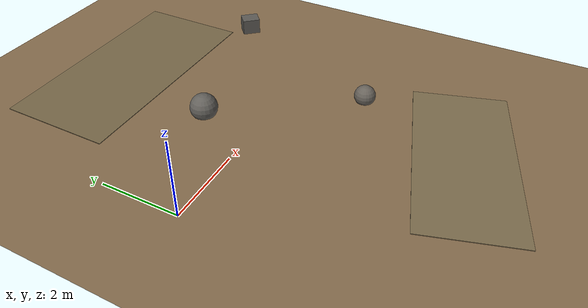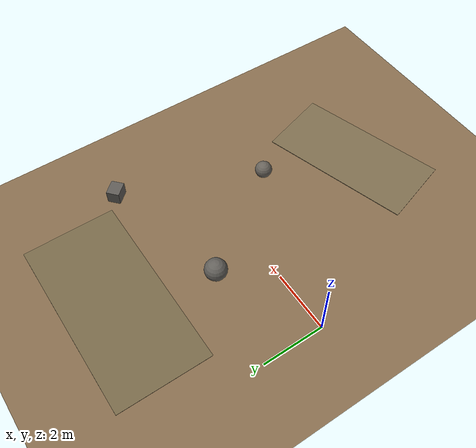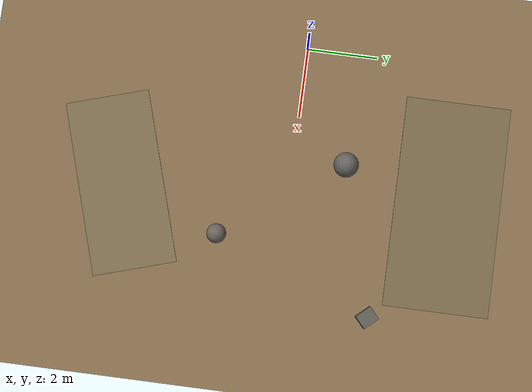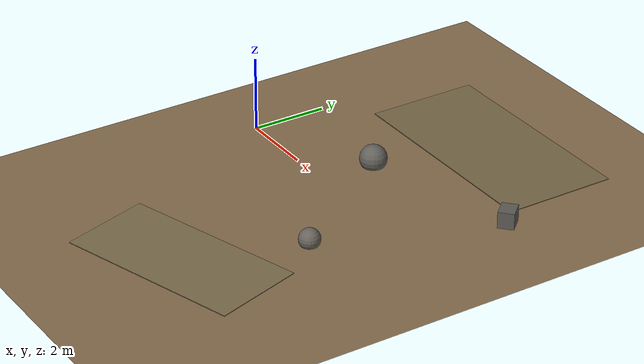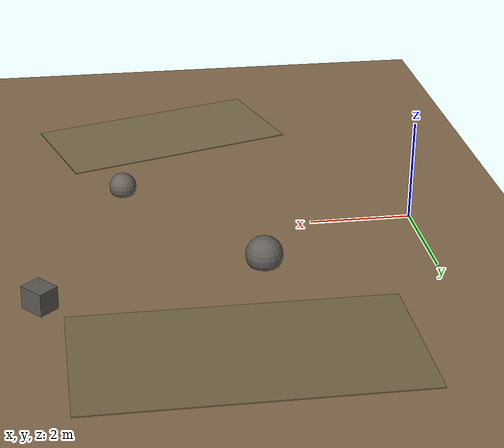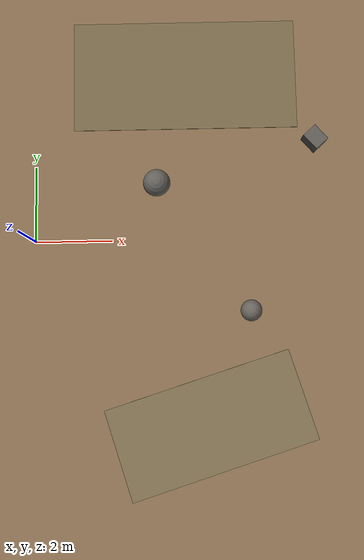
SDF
<?xml version="1.0" ?>
<sdf version="1.9">
  <world name="easy">

    <physics name="1ms" type="ignored">
      <max_step_size>0.001</max_step_size>
      <real_time_factor>1.0</real_time_factor>
    </physics>

    <plugin filename="gz-sim-physics-system"
            name="gz::sim::systems::Physics"/>
    <plugin filename="gz-sim-user-commands-system"
            name="gz::sim::systems::UserCommands"/>
    <plugin filename="gz-sim-scene-broadcaster-system"
            name="gz::sim::systems::SceneBroadcaster"/>
    <!-- Required for the camera and depth sensors to produce anything. -->
    <plugin filename="gz-sim-sensors-system"
            name="gz::sim::systems::Sensors">
      <render_engine>ogre2</render_engine>
    </plugin>
    <plugin filename="gz-sim-imu-system"
            name="gz::sim::systems::Imu"/>
    <plugin filename="gz-sim-contact-system"
            name="gz::sim::systems::Contact"/>

    <gravity>0 0 -9.8</gravity>
    <magnetic_field>5.565e-6 2.289e-5 -4.239e-5</magnetic_field>

    <scene>
      <ambient>0.6 0.6 0.6 1</ambient>
      <background>0.75 0.82 0.90 1</background>
      <shadows>true</shadows>
    </scene>

    <!-- Midday sun, high elevation, soft shadows. Adversarial lighting is a
         different world; do not tune this one to be difficult. -->
    <light type="directional" name="sun">
      <cast_shadows>true</cast_shadows>
      <pose>0 0 12 0 0 0</pose>
      <diffuse>0.9 0.9 0.9 1</diffuse>
      <specular>0.25 0.25 0.25 1</specular>
      <attenuation>
        <range>1000</range>
        <constant>0.9</constant>
        <linear>0.01</linear>
        <quadratic>0.001</quadratic>
      </attenuation>
      <direction>-0.4 0.25 -0.9</direction>
    </light>

    <!-- ================================================== ground ==== -->
    <model name="ground_plane">
      <static>true</static>
      <link name="link">
        <collision name="collision">
          <geometry><plane><normal>0 0 1</normal><size>120 120</size></plane></geometry>
          <surface>
            <friction><ode><mu>0.9</mu><mu2>0.9</mu2></ode></friction>
          </surface>
        </collision>
        <visual name="visual">
          <geometry><plane><normal>0 0 1</normal><size>120 120</size></plane></geometry>
          <material>
            <ambient>0.42 0.34 0.24 1</ambient>
            <diffuse>0.52 0.42 0.30 1</diffuse>
            <specular>0.02 0.02 0.02 1</specular>
          </material>
        </visual>
      </link>
    </model>

    <!-- ============================================ sparse rocks ==== -->
    <model name="rock_a">
      <static>true</static>
      <pose>3.2 1.5 0.18 0 0 0.4</pose>
      <link name="link">
        <collision name="collision">
          <geometry><sphere><radius>0.36</radius></sphere></geometry>
        </collision>
        <visual name="visual">
          <geometry><sphere><radius>0.36</radius></sphere></geometry>
          <material>
            <ambient>0.28 0.27 0.26 1</ambient>
            <diffuse>0.38 0.37 0.35 1</diffuse>
          </material>
        </visual>
      </link>
    </model>

    <model name="rock_b">
      <static>true</static>
      <pose>5.6 -1.9 0.14 0 0 1.1</pose>
      <link name="link">
        <collision name="collision">
          <geometry><sphere><radius>0.28</radius></sphere></geometry>
        </collision>
        <visual name="visual">
          <geometry><sphere><radius>0.28</radius></sphere></geometry>
          <material>
            <ambient>0.30 0.28 0.26 1</ambient>
            <diffuse>0.40 0.38 0.35 1</diffuse>
          </material>
        </visual>
      </link>
    </model>

    <model name="rock_c">
      <static>true</static>
      <pose>7.4 2.6 0.22 0 0 2.3</pose>
      <link name="link">
        <collision name="collision">
          <geometry><box><size>0.5 0.42 0.44</size></box></geometry>
        </collision>
        <visual name="visual">
          <geometry><box><size>0.5 0.42 0.44</size></box></geometry>
          <material>
            <ambient>0.26 0.25 0.24 1</ambient>
            <diffuse>0.36 0.35 0.33 1</diffuse>
          </material>
        </visual>
      </link>
    </model>

    <model name="texture_patch_left">
      <static>true</static>
      <pose>4.0 4.5 0.01 0 0 0</pose>
      <link name="link">
        <visual name="visual">
          <geometry><box><size>6.0 3.0 0.02</size></box></geometry>
          <material>
            <ambient>0.34 0.30 0.22 1</ambient>
            <diffuse>0.46 0.40 0.28 1</diffuse>
          </material>
        </visual>
        <collision name="collision">
          <geometry><box><size>6.0 3.0 0.02</size></box></geometry>
        </collision>
      </link>
    </model>

    <model name="texture_patch_right">
      <static>true</static>
      <pose>4.5 -4.8 0.01 0 0 0.3</pose>
      <link name="link">
        <visual name="visual">
          <geometry><box><size>5.0 2.4 0.02</size></box></geometry>
          <material>
            <ambient>0.36 0.31 0.23 1</ambient>
            <diffuse>0.48 0.42 0.30 1</diffuse>
          </material>
        </visual>
        <collision name="collision">
          <geometry><box><size>5.0 2.4 0.02</size></box></geometry>
        </collision>
      </link>
    </model>

  </world>
</sdf>
